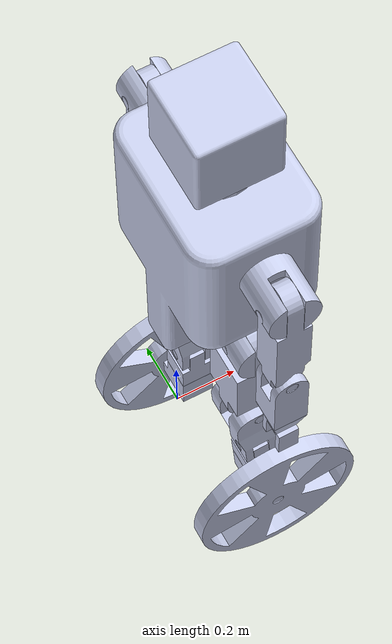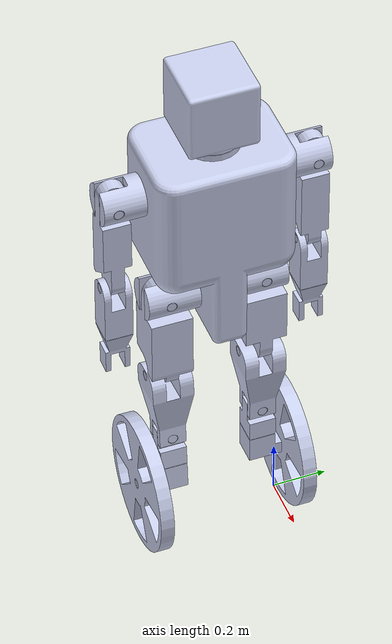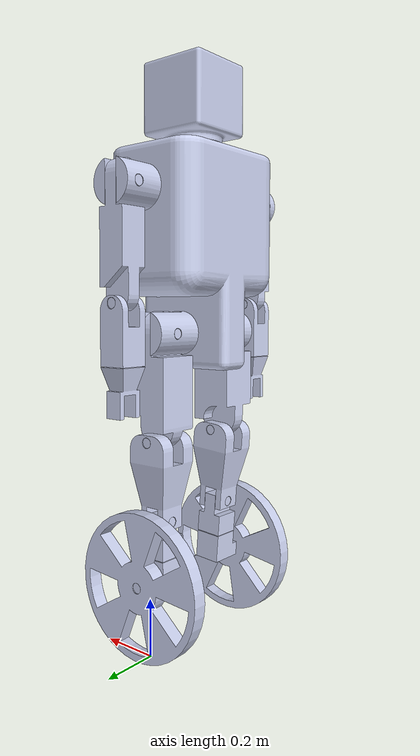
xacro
<?xml version="1.0" ?>
<robot
  name="wheeled_humanoid_robot"  xmlns:xacro="http://ros.org/wiki/xacro">

  # Add this before base link
  <link name="dummy_link"></link>
  <link
    name="base_link">
    <inertial>
      <origin
        xyz="0.0106007241216466 1.45043594865139 0.243235567534499"
        rpy="0 0 0" />
      <mass
        value="107.726187446562" />
      <inertia
        ixx="5.6782038141103"
        ixy="2.7603272204579E-05"
        ixz="-1.81388271893312E-07"
        iyy="3.18933313851226"
        iyz="3.81902344842371E-08"
        izz="4.92859558972679" />
    </inertial>
    <visual>
      <origin
        xyz="0 0 0"
        rpy="0 0 0" />
      <geometry>
        <mesh
          filename="package://wheeled_humanoid_robot/meshes/base_link.STL" />
      </geometry>
      <material
        name="">
        <color
          rgba="0.792156862745098 0.819607843137255 0.933333333333333 1" />
      </material>
    </visual>
    <collision>
      <origin
        xyz="0 0 0"
        rpy="0 0 0" />
      <geometry>
        <mesh
          filename="package://wheeled_humanoid_robot/meshes/base_link.STL" />
      </geometry>
    </collision>
  </link>

    # Add this after base link
  <joint
    name="dummy_joint"
    type="fixed">
    <origin
      rpy="0 0 0"
      xyz="0 0 0" />
    <parent
      link="dummy_link"/>
    <child
      link="base_link"/>
  </joint>

  <link
    name="left_shoulder">
    <inertial>
      <origin
        xyz="-3.96292054727354E-08 0.0726345100381241 -2.167081318942E-07"
        rpy="0 0 0" />
      <mass
        value="1.56019572503001" />
      <inertia
        ixx="0.00656388679851847"
        ixy="1.41063788210675E-09"
        ixz="9.10761052510705E-10"
        iyy="0.0057934244345591"
        iyz="1.77577535678169E-09"
        izz="0.00559373575880951" />
    </inertial>
    <visual>
      <origin
        xyz="0 0 0"
        rpy="0 0 0" />
      <geometry>
        <mesh
          filename="package://wheeled_humanoid_robot/meshes/left_shoulder.STL" />
      </geometry>
      <material
        name="">
        <color
          rgba="0.792156862745098 0.819607843137255 0.933333333333333 1" />
      </material>
    </visual>
    <collision>
      <origin
        xyz="0 0 0"
        rpy="0 0 0" />
      <geometry>
        <mesh
          filename="package://wheeled_humanoid_robot/meshes/left_shoulder.STL" />
      </geometry>
    </collision>
  </link>
  <joint
    name="left_shoulder_joint"
    type="revolute">
    <origin
      xyz="0.010602 0.013304 1.5898"
      rpy="0 -1.5708 0" />
    <parent
      link="base_link" />
    <child
      link="left_shoulder" />
    <axis
      xyz="0 1 0" />
    <limit
      lower="-3.14"
      upper="3.14"
      effort="100"
      velocity="10" />
  </joint>
  <link
    name="left_arm">
    <inertial>
      <origin
        xyz="-0.000893113638092772 0.172410538496933 2.77555756156289E-17"
        rpy="0 0 0" />
      <mass
        value="3.64824554759342" />
      <inertia
        ixx="0.0544185452421672"
        ixy="0.000425031939006034"
        ixz="5.15828334546812E-19"
        iyy="0.00551340267860238"
        iyz="3.59003427926645E-18"
        izz="0.0544358083122559" />
    </inertial>
    <visual>
      <origin
        xyz="0 0 0"
        rpy="0 0 0" />
      <geometry>
        <mesh
          filename="package://wheeled_humanoid_robot/meshes/left_arm.STL" />
      </geometry>
      <material
        name="">
        <color
          rgba="0.792156862745098 0.819607843137255 0.933333333333333 1" />
      </material>
    </visual>
    <collision>
      <origin
        xyz="0 0 0"
        rpy="0 0 0" />
      <geometry>
        <mesh
          filename="package://wheeled_humanoid_robot/meshes/left_arm.STL" />
      </geometry>
    </collision>
  </link>
  <joint
    name="left_arm_joint"
    type="revolute">
    <origin
      xyz="0 0.1016 0"
      rpy="1.5708 -1.5708 0" />
    <parent
      link="left_shoulder" />
    <child
      link="left_arm" />
    <axis
      xyz="1 0 0" />
    <limit
      lower="0"
      upper="0"
      effort="100"
      velocity="10" />
  </joint>
  <link
    name="left_elbow">
    <inertial>
      <origin
        xyz="1.38777878078145E-17 1.73472347597681E-18 0.11606676677164"
        rpy="0 0 0" />
      <mass
        value="1.74639332378377" />
      <inertia
        ixx="0.00724841040068815"
        ixy="-9.33059730959815E-19"
        ixz="-1.28949695704378E-18"
        iyy="0.00751277539646961"
        iyz="8.35321357120543E-19"
        izz="0.00323005681450046" />
    </inertial>
    <visual>
      <origin
        xyz="0 0 0"
        rpy="0 0 0" />
      <geometry>
        <mesh
          filename="package://wheeled_humanoid_robot/meshes/left_elbow.STL" />
      </geometry>
      <material
        name="">
        <color
          rgba="0.792156862745098 0.819607843137255 0.933333333333333 1" />
      </material>
    </visual>
    <collision>
      <origin
        xyz="0 0 0"
        rpy="0 0 0" />
      <geometry>
        <mesh
          filename="package://wheeled_humanoid_robot/meshes/left_elbow.STL" />
      </geometry>
    </collision>
  </link>
  <joint
    name="left_elbow_joint"
    type="revolute">
    <origin
      xyz="0 0.381 0"
      rpy="-1.5708 1.5708 0" />
    <parent
      link="left_arm" />
    <child
      link="left_elbow" />
    <axis
      xyz="1 0 0" />
    <limit
      lower="0"
      upper="0"
      effort="100"
      velocity="10" />
  </joint>
  <link
    name="left_wrist">
    <inertial>
      <origin
        xyz="8.32667268468867E-17 0 0.060409096734418"
        rpy="0 0 0" />
      <mass
        value="0.728849105066119" />
      <inertia
        ixx="0.00186899083790638"
        ixy="-3.05705416583082E-21"
        ixz="1.61190820908969E-19"
        iyy="0.00205929919732262"
        iyz="-5.7117951154831E-21"
        izz="0.000957693606063723" />
    </inertial>
    <visual>
      <origin
        xyz="0 0 0"
        rpy="0 0 0" />
      <geometry>
        <mesh
          filename="package://wheeled_humanoid_robot/meshes/left_wrist.STL" />
      </geometry>
      <material
        name="">
        <color
          rgba="0.792156862745098 0.819607843137255 0.933333333333333 1" />
      </material>
    </visual>
    <collision>
      <origin
        xyz="0 0 0"
        rpy="0 0 0" />
      <geometry>
        <mesh
          filename="package://wheeled_humanoid_robot/meshes/left_wrist.STL" />
      </geometry>
    </collision>
  </link>
  <joint
    name="left_wrist_joint"
    type="revolute">
    <origin
      xyz="0 0 0.20574"
      rpy="0 0 0" />
    <parent
      link="left_elbow" />
    <child
      link="left_wrist" />
    <axis
      xyz="0 0 1" />
    <limit
      lower="-3.14"
      upper="3.14"
      effort="100"
      velocity="10" />
  </joint>
  <link
    name="right_shoulder">
    <inertial>
      <origin
        xyz="-3.96292052506908E-08 0.0726345100381243 -2.16708131745014E-07"
        rpy="0 0 0" />
      <mass
        value="1.56019572503002" />
      <inertia
        ixx="0.0065638867985185"
        ixy="1.41063788375166E-09"
        ixz="9.10761048538323E-10"
        iyy="0.00579342443455913"
        iyz="1.77577534679862E-09"
        izz="0.00559373575880952" />
    </inertial>
    <visual>
      <origin
        xyz="0 0 0"
        rpy="0 0 0" />
      <geometry>
        <mesh
          filename="package://wheeled_humanoid_robot/meshes/right_shoulder.STL" />
      </geometry>
      <material
        name="">
        <color
          rgba="0.792156862745098 0.819607843137255 0.933333333333333 1" />
      </material>
    </visual>
    <collision>
      <origin
        xyz="0 0 0"
        rpy="0 0 0" />
      <geometry>
        <mesh
          filename="package://wheeled_humanoid_robot/meshes/right_shoulder.STL" />
      </geometry>
    </collision>
  </link>
  <joint
    name="right_shoulder_joint"
    type="revolute">
    <origin
      xyz="0.010602 -0.49978 1.5898"
      rpy="3.14 -1.5708 0" />
    <parent
      link="base_link" />
    <child
      link="right_shoulder" />
    <axis
      xyz="0 1 0" />
    <limit
      lower="0"
      upper="0"
      effort="100"
      velocity="10" />
  </joint>
  <link
    name="right_arm">
    <inertial>
      <origin
        xyz="-0.000893113638092545 0.172410538496933 -1.11022302462516E-16"
        rpy="0 0 0" />
      <mass
        value="3.64824554759342" />
      <inertia
        ixx="0.0544185452421672"
        ixy="0.000425031939006017"
        ixz="8.37442146411413E-19"
        iyy="0.00551340267860238"
        iyz="6.60907236986942E-18"
        izz="0.0544358083122559" />
    </inertial>
    <visual>
      <origin
        xyz="0 0 0"
        rpy="0 0 0" />
      <geometry>
        <mesh
          filename="package://wheeled_humanoid_robot/meshes/right_arm.STL" />
      </geometry>
      <material
        name="">
        <color
          rgba="0.792156862745098 0.819607843137255 0.933333333333333 1" />
      </material>
    </visual>
    <collision>
      <origin
        xyz="0 0 0"
        rpy="0 0 0" />
      <geometry>
        <mesh
          filename="package://wheeled_humanoid_robot/meshes/right_arm.STL" />
      </geometry>
    </collision>
  </link>
  <joint
    name="right_arm_joint"
    type="revolute">
    <origin
      xyz="0 0.1016 0"
      rpy="1.5708 -1.5708 0" />
    <parent
      link="right_shoulder" />
    <child
      link="right_arm" />
    <axis
      xyz="1 0 0" />
    <limit
      lower="-3.14"
      upper="3.14"
      effort="100"
      velocity="10" />
  </joint>
  <link
    name="right_elbow">
    <inertial>
      <origin
        xyz="-1.11022302462516E-16 3.12250225675825E-17 0.11606676677164"
        rpy="0 0 0" />
      <mass
        value="1.74639332378377" />
      <inertia
        ixx="0.00724841040068815"
        ixy="1.7205356741103E-19"
        ixz="1.46010738420509E-18"
        iyy="0.0075127753964696"
        iyz="-1.9422670934523E-18"
        izz="0.00323005681450046" />
    </inertial>
    <visual>
      <origin
        xyz="0 0 0"
        rpy="0 0 0" />
      <geometry>
        <mesh
          filename="package://wheeled_humanoid_robot/meshes/right_elbow.STL" />
      </geometry>
      <material
        name="">
        <color
          rgba="0.792156862745098 0.819607843137255 0.933333333333333 1" />
      </material>
    </visual>
    <collision>
      <origin
        xyz="0 0 0"
        rpy="0 0 0" />
      <geometry>
        <mesh
          filename="package://wheeled_humanoid_robot/meshes/right_elbow.STL" />
      </geometry>
    </collision>
  </link>
  <joint
    name="right_elbow_joint"
    type="revolute">
    <origin
      xyz="0 0.381 0"
      rpy="-1.5708 -1.5708 0" />
    <parent
      link="right_arm" />
    <child
      link="right_elbow" />
    <axis
      xyz="1 0 0" />
    <limit
      lower="-3.14"
      upper="3.14"
      effort="100"
      velocity="10" />
  </joint>
  <link
    name="right_wrist">
    <inertial>
      <origin
        xyz="-2.22044604925031E-16 1.59594559789866E-16 0.0604090967344179"
        rpy="0 0 0" />
      <mass
        value="0.728849105066118" />
      <inertia
        ixx="0.00186899083790638"
        ixy="-2.97155405962741E-19"
        ixz="4.87374547293201E-19"
        iyy="0.00205929919732262"
        iyz="-4.64593380861232E-19"
        izz="0.000957693606063722" />
    </inertial>
    <visual>
      <origin
        xyz="0 0 0"
        rpy="0 0 0" />
      <geometry>
        <mesh
          filename="package://wheeled_humanoid_robot/meshes/right_wrist.STL" />
      </geometry>
      <material
        name="">
        <color
          rgba="0.792156862745098 0.819607843137255 0.933333333333333 1" />
      </material>
    </visual>
    <collision>
      <origin
        xyz="0 0 0"
        rpy="0 0 0" />
      <geometry>
        <mesh
          filename="package://wheeled_humanoid_robot/meshes/right_wrist.STL" />
      </geometry>
    </collision>
  </link>
  <joint
    name="right_wrist_joint"
    type="revolute">
    <origin
      xyz="0 0 0.20574"
      rpy="0 0 0" />
    <parent
      link="right_elbow" />
    <child
      link="right_wrist" />
    <axis
      xyz="0 0 1" />
    <limit
      lower="-3.14"
      upper="3.14"
      effort="100"
      velocity="10" />
  </joint>
  <link
    name="left_hip">
    <inertial>
      <origin
        xyz="-3.24063686996112E-08 -0.0838074396606449 -2.93284197018517E-07"
        rpy="0 0 0" />
      <mass
        value="1.93964619163942" />
      <inertia
        ixx="0.0106525223302184"
        ixy="7.10819583347524E-10"
        ixz="1.35242370949113E-09"
        iyy="0.00698383305415745"
        iyz="1.23222038684469E-08"
        izz="0.00888495918343655" />
    </inertial>
    <visual>
      <origin
        xyz="0 0 0"
        rpy="0 0 0" />
      <geometry>
        <mesh
          filename="package://wheeled_humanoid_robot/meshes/left_hip.STL" />
      </geometry>
      <material
        name="">
        <color
          rgba="0.792156862745098 0.819607843137255 0.933333333333333 1" />
      </material>
    </visual>
    <collision>
      <origin
        xyz="0 0 0"
        rpy="0 0 0" />
      <geometry>
        <mesh
          filename="package://wheeled_humanoid_robot/meshes/left_hip.STL" />
      </geometry>
    </collision>
  </link>
  <joint
    name="left_hip_joint"
    type="revolute">
    <origin
      xyz="0.010602 0 1.1072"
      rpy="0 -1.5708 0" />
    <parent
      link="base_link" />
    <child
      link="left_hip" />
    <axis
      xyz="0 1 0" />
    <limit
      lower="0"
      upper="0"
      effort="100"
      velocity="10" />
  </joint>
  <link
    name="left_leg">
    <inertial>
      <origin
        xyz="0.0020950013124778 0.173937286502491 4.16333634234434E-17"
        rpy="0 0 0" />
      <mass
        value="6.90607667394109" />
      <inertia
        ixx="0.0874000302830266"
        ixy="-0.00185919086350345"
        ixz="7.1175382518895E-19"
        iyy="0.0234639864741564"
        iyz="-7.53078148089085E-18"
        izz="0.0868667740278979" />
    </inertial>
    <visual>
      <origin
        xyz="0 0 0"
        rpy="0 0 0" />
      <geometry>
        <mesh
          filename="package://wheeled_humanoid_robot/meshes/left_leg.STL" />
      </geometry>
      <material
        name="">
        <color
          rgba="0.792156862745098 0.819607843137255 0.933333333333333 1" />
      </material>
    </visual>
    <collision>
      <origin
        xyz="0 0 0"
        rpy="0 0 0" />
      <geometry>
        <mesh
          filename="package://wheeled_humanoid_robot/meshes/left_leg.STL" />
      </geometry>
    </collision>
  </link>
  <joint
    name="left_leg_joint"
    type="revolute">
    <origin
      xyz="0 -0.069246 0"
      rpy="1.5708 -1.5708 0" />
    <parent
      link="left_hip" />
    <child
      link="left_leg" />
    <axis
      xyz="1 0 0" />
    <limit
      lower="-3.14"
      upper="3.14"
      effort="100"
      velocity="10" />
  </joint>
  <link
    name="left_knee">
    <inertial>
      <origin
        xyz="0 -0.114379732466841 3.64291929955129E-17"
        rpy="0 0 0" />
      <mass
        value="4.0874110281987" />
      <inertia
        ixx="0.0301800448742339"
        ixy="-3.2479730113273E-18"
        ixz="-9.76063588449612E-19"
        iyy="0.0139240835744229"
        iyz="1.94592153639194E-18"
        izz="0.0312348898732568" />
    </inertial>
    <visual>
      <origin
        xyz="0 0 0"
        rpy="0 0 0" />
      <geometry>
        <mesh
          filename="package://wheeled_humanoid_robot/meshes/left_knee.STL" />
      </geometry>
      <material
        name="">
        <color
          rgba="0.792156862745098 0.819607843137255 0.933333333333333 1" />
      </material>
    </visual>
    <collision>
      <origin
        xyz="0 0 0"
        rpy="0 0 0" />
      <geometry>
        <mesh
          filename="package://wheeled_humanoid_robot/meshes/left_knee.STL" />
      </geometry>
    </collision>
  </link>
  <joint
    name="left_knee_joint"
    type="revolute">
    <origin
      xyz="0 0.3683 0"
      rpy="3.1416 1.5708 0" />
    <parent
      link="left_leg" />
    <child
      link="left_knee" />
    <axis
      xyz="1 0 0" />
    <limit
      lower="-3.14"
      upper="3.14"
      effort="100"
      velocity="10" />
  </joint>
  <link
    name="left_ankle_pt1">
    <inertial>
      <origin
        xyz="0 -0.0629029228281084 -5.17681400300177E-05"
        rpy="0 0 0" />
      <mass
        value="1.17515922067024" />
      <inertia
        ixx="0.00302389455208288"
        ixy="2.22197930234944E-19"
        ixz="1.74730728656942E-19"
        iyy="0.00163337750998661"
        iyz="7.87013630139063E-19"
        izz="0.00318668563105977" />
    </inertial>
    <visual>
      <origin
        xyz="0 0 0"
        rpy="0 0 0" />
      <geometry>
        <mesh
          filename="package://wheeled_humanoid_robot/meshes/left_ankle_pt1.STL" />
      </geometry>
      <material
        name="">
        <color
          rgba="0.792156862745098 0.819607843137255 0.933333333333333 1" />
      </material>
    </visual>
    <collision>
      <origin
        xyz="0 0 0"
        rpy="0 0 0" />
      <geometry>
        <mesh
          filename="package://wheeled_humanoid_robot/meshes/left_ankle_pt1.STL" />
      </geometry>
    </collision>
  </link>
  <joint
    name="left_ankle_pt1_joint"
    type="revolute">
    <origin
      xyz="0 -0.2794 0"
      rpy="3.1416 0 3.1416" />
    <parent
      link="left_knee" />
    <child
      link="left_ankle_pt1" />
    <axis
      xyz="0 0 1" />
    <limit
      lower="-3.14"
      upper="3.14"
      effort="100"
      velocity="10" />
  </joint>
  <link
    name="left_ankle_pt2">
    <inertial>
      <origin
        xyz="-0.0113876860437379 -0.0557449655653097 1.21430643318376E-17"
        rpy="0 0 0" />
      <mass
        value="1.13544679961476" />
      <inertia
        ixx="0.00182638215770938"
        ixy="-0.000264485879523374"
        ixz="8.7811080667131E-22"
        iyy="0.00256318780094316"
        iyz="-8.77307876588523E-20"
        izz="0.00258363858998943" />
    </inertial>
    <visual>
      <origin
        xyz="0 0 0"
        rpy="0 0 0" />
      <geometry>
        <mesh
          filename="package://wheeled_humanoid_robot/meshes/left_ankle_pt2.STL" />
      </geometry>
      <material
        name="">
        <color
          rgba="0.792156862745098 0.819607843137255 0.933333333333333 1" />
      </material>
    </visual>
    <collision>
      <origin
        xyz="0 0 0"
        rpy="0 0 0" />
      <geometry>
        <mesh
          filename="package://wheeled_humanoid_robot/meshes/left_ankle_pt2.STL" />
      </geometry>
    </collision>
  </link>
  <joint
    name="left_ankle_pt2_joint"
    type="revolute">
    <origin
      xyz="0 -0.12954 -5.1768E-05"
      rpy="3.1416 3.14 3.1416" />
    <parent
      link="left_ankle_pt1" />
    <child
      link="left_ankle_pt2" />
    <axis
      xyz="0 1 0" />
    <limit
      lower="-3.14"
      upper="3.14"
      effort="100"
      velocity="10" />
  </joint>
  <link
    name="left_wheel">
    <inertial>
      <origin
        xyz="8.32667268468867E-17 -0.0254000000000003 -1.2490009027033E-16"
        rpy="0 0 0" />
      <mass
        value="6.69902756890433" />
      <inertia
        ixx="0.114271466015671"
        ixy="-5.97489383911613E-17"
        ixz="-3.46944695195361E-17"
        iyy="0.225661635613773"
        iyz="7.67227116125576E-18"
        izz="0.114271466015671" />
    </inertial>
    <visual>
      <origin
        xyz="0 0 0"
        rpy="0 0 0" />
      <geometry>
        <mesh
          filename="package://wheeled_humanoid_robot/meshes/left_wheel.STL" />
      </geometry>
      <material
        name="">
        <color
          rgba="0.792156862745098 0.819607843137255 0.933333333333333 1" />
      </material>
    </visual>
    <collision>
      <origin
        xyz="0 0 0"
        rpy="0 0 0" />
      <geometry>
        <mesh
          filename="package://wheeled_humanoid_robot/meshes/left_wheel.STL" />
      </geometry>
    </collision>
  </link>
  <joint
    name="left_wheel_joint"
    type="continuous">
    <origin
      xyz="-0.077216 -0.0762 0"
      rpy="0 -0.55466 -1.5708" />
    <parent
      link="left_ankle_pt2" />
    <child
      link="left_wheel" />
    <axis
      xyz="0 1 0" />
  </joint>
  <link
    name="right_hip">
    <inertial>
      <origin
        xyz="-3.24063689216558E-08 0.0933881267335711 -2.93284196921373E-07"
        rpy="0 0 0" />
      <mass
        value="1.93964619163942" />
      <inertia
        ixx="0.0106525223302185"
        ixy="7.10819581577124E-10"
        ixz="1.35242370870441E-09"
        iyy="0.00698383305415747"
        iyz="1.23222038584418E-08"
        izz="0.00888495918343657" />
    </inertial>
    <visual>
      <origin
        xyz="0 0 0"
        rpy="0 0 0" />
      <geometry>
        <mesh
          filename="package://wheeled_humanoid_robot/meshes/right_hip.STL" />
      </geometry>
      <material
        name="">
        <color
          rgba="0.792156862745098 0.819607843137255 0.933333333333333 1" />
      </material>
    </visual>
    <collision>
      <origin
        xyz="0 0 0"
        rpy="0 0 0" />
      <geometry>
        <mesh
          filename="package://wheeled_humanoid_robot/meshes/right_hip.STL" />
      </geometry>
    </collision>
  </link>
  <joint
    name="right_hip_joint"
    type="revolute">
    <origin
      xyz="0.010602 -0.30928 1.1072"
      rpy="3.1416 1.5708 0" />
    <parent
      link="base_link" />
    <child
      link="right_hip" />
    <axis
      xyz="0 1 0" />
    <limit
      lower="-3.14"
      upper="3.14"
      effort="100"
      velocity="10" />
  </joint>
  <link
    name="right_leg">
    <inertial>
      <origin
        xyz="0.00209500131247771 0.173937286502492 -5.55111512312578E-17"
        rpy="0 0 0" />
      <mass
        value="6.90607667394109" />
      <inertia
        ixx="0.0874000302830266"
        ixy="-0.00185919086350345"
        ixz="2.05319843182843E-18"
        iyy="0.0234639864741564"
        iyz="1.67952993641204E-17"
        izz="0.086866774027898" />
    </inertial>
    <visual>
      <origin
        xyz="0 0 0"
        rpy="0 0 0" />
      <geometry>
        <mesh
          filename="package://wheeled_humanoid_robot/meshes/right_leg.STL" />
      </geometry>
      <material
        name="">
        <color
          rgba="0.792156862745098 0.819607843137255 0.933333333333333 1" />
      </material>
    </visual>
    <collision>
      <origin
        xyz="0 0 0"
        rpy="0 0 0" />
      <geometry>
        <mesh
          filename="package://wheeled_humanoid_robot/meshes/right_leg.STL" />
      </geometry>
    </collision>
  </link>
  <joint
    name="right_leg_joint"
    type="revolute">
    <origin
      xyz="0 0.10795 0"
      rpy="1.5708 1.5708 0" />
    <parent
      link="right_hip" />
    <child
      link="right_leg" />
    <axis
      xyz="1 0 0" />
    <limit
      lower="-3.14"
      upper="3.14"
      effort="100"
      velocity="10" />
  </joint>
  <link
    name="right_knee">
    <inertial>
      <origin
        xyz="1.45805040263625E-09 0.114079028396153 -0.0082884545830748"
        rpy="0 0 0" />
      <mass
        value="4.0874110281987" />
      <inertia
        ixx="0.0301800448742339"
        ixy="-2.0667383998578E-10"
        ixz="1.50641018609994E-11"
        iyy="0.0140149840736073"
        iyz="0.00125111871263126"
        izz="0.0311439893740724" />
    </inertial>
    <visual>
      <origin
        xyz="0 0 0"
        rpy="0 0 0" />
      <geometry>
        <mesh
          filename="package://wheeled_humanoid_robot/meshes/right_knee.STL" />
      </geometry>
      <material
        name="">
        <color
          rgba="0.792156862745098 0.819607843137255 0.933333333333333 1" />
      </material>
    </visual>
    <collision>
      <origin
        xyz="0 0 0"
        rpy="0 0 0" />
      <geometry>
        <mesh
          filename="package://wheeled_humanoid_robot/meshes/right_knee.STL" />
      </geometry>
    </collision>
  </link>
  <joint
    name="right_knee_joint"
    type="revolute">
    <origin
      xyz="0 0.3683 0"
      rpy="3.14 -1.5708 3.14" />
    <parent
      link="right_leg" />
    <child
      link="right_knee" />
    <axis
      xyz="1 0 0" />
    <limit
      lower="-3.14"
      upper="3.14"
      effort="100"
      velocity="10" />
  </joint>
  <link
    name="right_ankle_pt1">
    <inertial>
      <origin
        xyz="0 -0.0629029228281084 5.1768140029931E-05"
        rpy="0 0 0" />
      <mass
        value="1.17515922067024" />
      <inertia
        ixx="0.00302389455208289"
        ixy="-4.457890892925E-19"
        ixz="2.00452508352177E-19"
        iyy="0.00163337750998661"
        iyz="-3.44488188062192E-19"
        izz="0.00318668563105978" />
    </inertial>
    <visual>
      <origin
        xyz="0 0 0"
        rpy="0 0 0" />
      <geometry>
        <mesh
          filename="package://wheeled_humanoid_robot/meshes/right_ankle_pt1.STL" />
      </geometry>
      <material
        name="">
        <color
          rgba="0.792156862745098 0.819607843137255 0.933333333333333 1" />
      </material>
    </visual>
    <collision>
      <origin
        xyz="0 0 0"
        rpy="0 0 0" />
      <geometry>
        <mesh
          filename="package://wheeled_humanoid_robot/meshes/right_ankle_pt1.STL" />
      </geometry>
    </collision>
  </link>
  <joint
    name="right_ankle_pt1_joint"
    type="revolute">
    <origin
      xyz="0 0.27867 -0.020247"
      rpy="3.0691 0 0" />
    <parent
      link="right_knee" />
    <child
      link="right_ankle_pt1" />
    <axis
      xyz="0 0 1" />
    <limit
      lower="-3.14"
      upper="3.14"
      effort="100"
      velocity="10" />
  </joint>
  <link
    name="right_ankle_pt2">
    <inertial>
      <origin
        xyz="-0.0113876860437378 0.0557449655653096 1.21430643318376E-17"
        rpy="0 0 0" />
      <mass
        value="1.13544679961476" />
      <inertia
        ixx="0.00182638215770938"
        ixy="0.000264485879523375"
        ixz="-3.0106906459211E-21"
        iyy="0.00256318780094316"
        iyz="9.09296859182037E-20"
        izz="0.00258363858998943" />
    </inertial>
    <visual>
      <origin
        xyz="0 0 0"
        rpy="0 0 0" />
      <geometry>
        <mesh
          filename="package://wheeled_humanoid_robot/meshes/right_ankle_pt2.STL" />
      </geometry>
      <material
        name="">
        <color
          rgba="0.792156862745098 0.819607843137255 0.933333333333333 1" />
      </material>
    </visual>
    <collision>
      <origin
        xyz="0 0 0"
        rpy="0 0 0" />
      <geometry>
        <mesh
          filename="package://wheeled_humanoid_robot/meshes/right_ankle_pt2.STL" />
      </geometry>
    </collision>
  </link>
  <joint
    name="right_ankle_pt2_joint"
    type="revolute">
    <origin
      xyz="0 -0.12954 5.1768E-05"
      rpy="3.1416 0 0" />
    <parent
      link="right_ankle_pt1" />
    <child
      link="right_ankle_pt2" />
    <axis
      xyz="0 1 0" />
    <limit
      lower="-3.14"
      upper="3.14"
      effort="100"
      velocity="10" />
  </joint>
  <link
    name="right_wheel">
    <inertial>
      <origin
        xyz="0 -0.0254000000000003 2.77555756156289E-16"
        rpy="0 0 0" />
      <mass
        value="6.69902756890434" />
      <inertia
        ixx="0.114271466015671"
        ixy="-3.58115635159599E-17"
        ixz="-1.38777878078145E-17"
        iyy="0.225661635613773"
        iyz="-3.22154684235905E-17"
        izz="0.114271466015671" />
    </inertial>
    <visual>
      <origin
        xyz="0 0 0"
        rpy="0 0 0" />
      <geometry>
        <mesh
          filename="package://wheeled_humanoid_robot/meshes/right_wheel.STL" />
      </geometry>
      <material
        name="">
        <color
          rgba="0.792156862745098 0.819607843137255 0.933333333333333 1" />
      </material>
    </visual>
    <collision>
      <origin
        xyz="0 0 0"
        rpy="0 0 0" />
      <geometry>
        <mesh
          filename="package://wheeled_humanoid_robot/meshes/right_wheel.STL" />
      </geometry>
    </collision>
  </link>
  <joint
    name="right_wheel_joint"
    type="continuous">
    <origin
      xyz="-0.077216 0.0762 0"
      rpy="0 1.183 -1.5708" />
    <parent
      link="right_ankle_pt2" />
    <child
      link="right_wheel" />
    <axis
      xyz="0 1 0" />
    <limit
      lower="-3.14"
      upper="3.14"
      effort="100"
      velocity="10" />
  </joint>
  <link
    name="neck">
    <inertial>
      <origin
        xyz="-1.21430643318376E-17 0.145510643487064 1.11022302462516E-16"
        rpy="0 0 0" />
      <mass
        value="17.1307231054686" />
      <inertia
        ixx="0.191681675087255"
        ixy="-8.08732484847028E-18"
        ixz="1.09320189755008E-17"
        iyy="0.178241912023667"
        iyz="2.10132051143793E-18"
        izz="0.191681675087255" />
    </inertial>
    <visual>
      <origin
        xyz="0 0 0"
        rpy="1.57 0 0" />
      <geometry>
        <mesh
          filename="package://wheeled_humanoid_robot/meshes/neck.STL" />
      </geometry>
      <material
        name="">
        <color
          rgba="0.792156862745098 0.819607843137255 0.933333333333333 1" />
      </material>
    </visual>
    <collision>
      <origin
        xyz="0 0 0"
        rpy="0 0 0" />
      <geometry>
        <mesh
          filename="package://wheeled_humanoid_robot/meshes/neck.STL" />
      </geometry>
    </collision>
  </link>
  <joint
    name="neck_joint"
    type="continuous">
    <origin
      xyz="0.010481 -0.24324 1.7702"
      rpy="0 0 0" />
    <parent
      link="base_link" />
    <child
      link="neck" />
    <axis
      xyz="0 1 0" />
  </joint>

 <ros2_control name="GazeboSystem" type="system">
 <hardware>
     <plugin>gazebo_ros2_control/GazeboSystem</plugin>
 </hardware>

# Position Controller

 <joint name="left_shoulder_joint">
     <command_interface name="position">
         <param name="min">-3.14</param>
         <param name="max">3.14</param>
     </command_interface>
     <state_interface name="position"/>
     <state_interface name="velocity"/>
 </joint>

 <joint name="left_arm_joint">
     <command_interface name="position">
         <param name="min">-3.14</param>
         <param name="max">3.14</param>
     </command_interface>
     <state_interface name="position"/>
     <state_interface name="velocity"/>
 </joint>

 <joint name="left_elbow_joint">
     <command_interface name="position">
         <param name="min">-3.14</param>
         <param name="max">3.14</param>
     </command_interface>
     <state_interface name="position"/>
     <state_interface name="velocity"/>
 </joint>

 <joint name="left_wrist_joint">
     <command_interface name="position">
         <param name="min">-3.14</param>
         <param name="max">3.14</param>
     </command_interface>
     <state_interface name="position"/>
     <state_interface name="velocity"/>
 </joint>

 <joint name="left_hip_joint">
     <command_interface name="position">
         <param name="min">-3.14</param>
         <param name="max">3.14</param>
     </command_interface>
     <state_interface name="position"/>
     <state_interface name="velocity"/>
 </joint>

  <joint name="left_leg_joint">
     <command_interface name="position">
         <param name="min">-3.14</param>
         <param name="max">3.14</param>
     </command_interface>
     <state_interface name="position"/>
     <state_interface name="velocity"/>
 </joint>

 <joint name="left_knee_joint">
     <command_interface name="position">
         <param name="min">-3.14</param>
         <param name="max">3.14</param>
     </command_interface>
     <state_interface name="position"/>
     <state_interface name="velocity"/>
 </joint>

 <joint name="left_ankle_pt1_joint">
     <command_interface name="position">
         <param name="min">-3.14</param>
         <param name="max">3.14</param>
     </command_interface>
     <state_interface name="position"/>
     <state_interface name="velocity"/>
 </joint>

 <joint name="left_ankle_pt2_joint">
     <command_interface name="position">
         <param name="min">-3.14</param>
         <param name="max">3.14</param>
     </command_interface>
     <state_interface name="position"/>
     <state_interface name="velocity"/>
 </joint>

 <joint name="left_wheel_joint">
     <command_interface name="position">
         <param name="min">-3.14</param>
         <param name="max">3.14</param>
     </command_interface>
     <state_interface name="position"/>
     <state_interface name="velocity"/>
 </joint>

  <joint name="right_arm_joint">
     <command_interface name="position">
         <param name="min">-3.14</param>
         <param name="max">3.14</param>
     </command_interface>
     <state_interface name="position"/>
     <state_interface name="velocity"/>
 </joint>

  <joint name="right_elbow_joint">
     <command_interface name="position">
         <param name="min">-3.14</param>
         <param name="max">3.14</param>
     </command_interface>
     <state_interface name="position"/>
     <state_interface name="velocity"/>
 </joint>

   <joint name="right_wrist_joint">
     <command_interface name="position">
         <param name="min">-3.14</param>
         <param name="max">3.14</param>
     </command_interface>
     <state_interface name="position"/>
     <state_interface name="velocity"/>
 </joint>

   <joint name="right_hip_joint">
     <command_interface name="position">
         <param name="min">-3.14</param>
         <param name="max">3.14</param>
     </command_interface>
     <state_interface name="position"/>
     <state_interface name="velocity"/>
 </joint>

   <joint name="right_leg_joint">
     <command_interface name="position">
         <param name="min">-3.14</param>
         <param name="max">3.14</param>
     </command_interface>
     <state_interface name="position"/>
     <state_interface name="velocity"/>
 </joint>

    <joint name="right_knee_joint">
     <command_interface name="position">
         <param name="min">-3.14</param>
         <param name="max">3.14</param>
     </command_interface>
     <state_interface name="position"/>
     <state_interface name="velocity"/>
 </joint>

  <joint name="right_ankle_pt1_joint">
     <command_interface name="position">
         <param name="min">-3.14</param>
         <param name="max">3.14</param>
     </command_interface>
     <state_interface name="position"/>
     <state_interface name="velocity"/>
 </joint>

  <joint name="right_ankle_pt2_joint">
     <command_interface name="position">
         <param name="min">-3.14</param>
         <param name="max">3.14</param>
     </command_interface>
     <state_interface name="position"/>
     <state_interface name="velocity"/>
 </joint>

  <joint name="right_wheel_joint">
     <command_interface name="position">
         <param name="min">-3.14</param>
         <param name="max">3.14</param>
     </command_interface>
     <state_interface name="position"/>
     <state_interface name="velocity"/>
 </joint>

 <joint name="neck_joint">
     <command_interface name="position">
         <param name="min">-3.14</param>
         <param name="max">3.14</param>
     </command_interface>
     <state_interface name="position"/>
     <state_interface name="velocity"/>
 </joint>

 </ros2_control>

<gazebo>
    <plugin filename="libgazebo_ros2_control.so" name="gazebo_ros2_control">
        <parameters>$(find wheeled_humanoid_robot)/config/control.yaml</parameters>
    </plugin>
</gazebo>

  <gazebo reference="neck">
  <sensor name="lidar" type="ray">
    <pose>0 0 0.3 0 0 0</pose>
    <always_on>true</always_on>
    <visualize>true</visualize>
    <update_rate>5</update_rate>
    <ray>
      <scan>
        <horizontal>
          <samples>360</samples>
          <resolution>1.00000</resolution>
          <min_angle>0.000000</min_angle>
          <max_angle>6.280000</max_angle>
        </horizontal>
      </scan>
      <range>
        <min>0.120000</min>
        <max>3.5</max>
        <resolution>0.015000</resolution>
      </range>
      <noise>
        <type>gaussian</type>
        <mean>0.0</mean>
        <stddev>0.01</stddev>
      </noise>
    </ray>
    <plugin name="scan" filename="libgazebo_ros_ray_sensor.so">
      <ros>
        <remapping>~/out:=scan</remapping>
      </ros>
      <output_type>sensor_msgs/LaserScan</output_type>
      <frame_name>neck</frame_name>
    </plugin>
  </sensor>
  </gazebo>

</robot>
